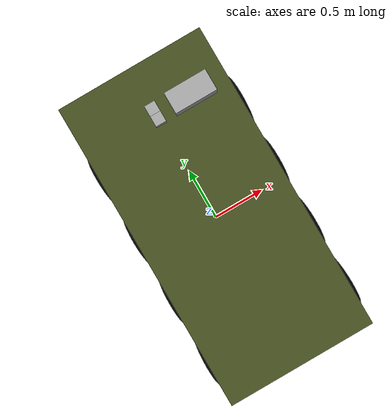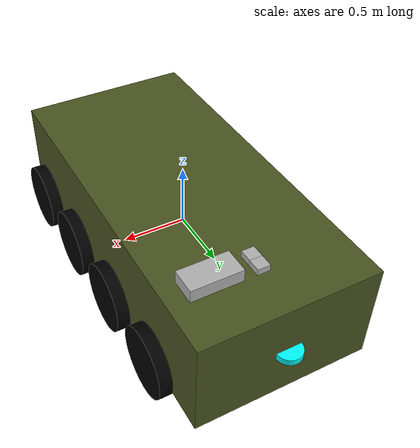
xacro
<?xml version="1.0" ?>
<!-- |    This document was autogenerated by xacro from /home/k/ros2_ws/src/my_robot_description/urdf/argo_j8.urdf.xacro | -->
<!-- |    EDITING THIS FILE BY HAND IS NOT RECOMMENDED                                 | -->
<robot name="argo_j8" xmlns:xacro="http://www.ros.org/wiki/xacro">
  <!-- Specify some standard inertial calculations https://en.wikipedia.org/wiki/List_of_moments_of_inertia -->
  <!-- These make use of xacro's mathematical functionality -->

<xacro:include filename="inertial_macros.xacro"/>
<xacro:include filename="wheel_macro.xacro"/>

  <!-- Definicion de materiales constantes -->
  <material name="Military green">
    <color rgba="0.29 0.33 0.13 1.0"/>
  </material>
  <material name="black">
    <color rgba="0.0 0.0 0.0 1.0"/>
  </material>
  <material name="blue">
    <color rgba="0.0 1.0 1.0 1.0"/>
  </material>
  <material name="grey">
    <color rgba="0.7 0.7 0.7 1.0"/>
  </material>

  <!-- Chasis -->
  <link name="base_link">
    <visual>
      <geometry>
        <box size="1.40 2.94 0.81"/> <!-- Dimensiones en metros -->
      </geometry>
      <origin rpy="0 0 0" xyz="0 0 0"/>
      <material name="Military green"/>
    </visual>
    <collision>
      <geometry>
        <box size="1.40 2.94 0.81"/> <!-- Dimensiones en metros -->
      </geometry>
      <origin rpy="0 0 0" xyz="0 0 0"/>
    </collision>
    <xacro:inertial_box mass="750" x="1.40" y="2.94" z="0.81">
     <origin xyz="0 0 0" rpy="0 0 0" />
    </xacro:inertial_box>
  </link>

  <!-- LiDAR, Camaras, y FixPosition -->
  <link name="LiDAR">
    <visual>
      <geometry>
        <cylinder length="0.05" radius="0.1"/> <!-- Dimensiones en metros -->
      </geometry>
      <origin rpy="0 0 0" xyz="0 0 0"/>
      <material name="blue"/>
    </visual>
    <collision>
      <geometry>
        <box size="0.2 0.2 0.05"/> <!-- Dimensiones en metros -->
      </geometry>
      <origin rpy="0 0 0" xyz="0 0 0"/>
    </collision>
  </link>

  <link name="front_camera">
    <visual>
      <geometry>
        <box size="0.1 0.1 0.1"/> <!-- Dimensiones en metros -->
      </geometry>
      <origin rpy="0 0 0" xyz="0 0 0"/>
      <material name="grey"/>
    </visual>
    <collision>
      <geometry>
        <box size="0.1 0.1 0.1"/> <!-- Dimensiones en metros -->
      </geometry>
      <origin rpy="0 0 0" xyz="0 0 0"/>
    </collision>
  </link>

  <link name="back_camera">
    <visual>
      <geometry>
        <box size="0.1 0.1 0.1"/> <!-- Dimensiones en metros -->
      </geometry>
      <origin rpy="0 0 0" xyz="0 0 0"/>
      <material name="grey"/>
    </visual>
    <collision>
      <geometry>
        <box size="0.1 0.1 0.1"/> <!-- Dimensiones en metros -->
      </geometry>
      <origin rpy="0 0 0" xyz="0 0 0"/>
    </collision>
  </link>

  <link name="fix_position">
    <visual>
      <geometry>
        <box size="0.4 0.2 0.2"/> <!-- Dimensiones en metros -->
      </geometry>
      <origin rpy="0 0 0" xyz="0 0 0"/>
      <material name="grey"/>
    </visual>
    <collision>
      <geometry>
        <box size="0.4 0.2 0.2"/> <!-- Dimensiones en metros -->
      </geometry>
      <origin rpy="0 0 0" xyz="0 0 0"/>
    </collision>
  </link>

<!-- Definicion de las 8 ruedas (links y joins) -->

  <xacro:wheel_macro prefix="front_left" origin_xyz="-0.7 0.88 -0.325" />
  <xacro:wheel_macro prefix="front_right" origin_xyz= "0.7 0.88 -0.325" />
  <xacro:wheel_macro prefix="midfront_left" origin_xyz= "-0.7 0.19 -0.325"/>
  <xacro:wheel_macro prefix="midfront_right" origin_xyz= "0.7 0.19 -0.325"/>
  <xacro:wheel_macro prefix="midback_left" origin_xyz= "-0.7 -0.5 -0.325" />
  <xacro:wheel_macro prefix="midback_right" origin_xyz= "0.7 -0.5 -0.325" />
  <xacro:wheel_macro prefix="back_left" origin_xyz= "-0.7 -1.19 -0.325" />
  <xacro:wheel_macro prefix="back_right" origin_xyz= "0.7 -1.19 -0.325" />

  <!-- Link virtual para base del plano.  -->
  <link name="base_footprint"/>

  <!-- Joint de referencia de la base del plano y Argo J8 -->
  <joint name="joint_base_footprint" type="fixed">
    <parent link="base_link"/>
    <child link="base_footprint"/>
    <origin rpy="0 0 0" xyz="0 0 -0.605"/>
    <!-- Posición de la rueda con respecto al chasis -->
  </joint>

  <!-- Definicion de Joints entre chasis y LiDAR, cámara y FixPosition con chasis -->

  <!-- Joint entre chasis y LiDAR -->
  <joint name="joint_LiDAR" type="fixed">
    <parent link="base_link"/>
    <child link="LiDAR"/>
    <origin rpy="0 0 1.57" xyz="0 1.47 0"/> <!-- Posición del LiDAR con respecto al chasis -->
  </joint>

  <!-- Joint entre chasis y camaras -->
  <joint name="joint_front_camera" type="fixed">
    <parent link="base_link"/>
    <child link="front_camera"/>
    <origin rpy="0 0 0" xyz="0 1.06 0.405"/> <!-- Posición de la camara con respecto al chasis -->
  </joint>

  <joint name="joint_back_camera" type="fixed">
    <parent link="base_link"/>
    <child link="back_camera"/>
    <origin rpy="0 0 0" xyz="0 0.96 0.405"/> <!-- Posición de la camara con respecto al chasis -->
  </joint>
  <!-- Joint entre chasis y FixPosition -->
  <joint name="joint_fix_position" type="fixed">
    <parent link="base_link"/>
    <child link="fix_position"/>
    <origin rpy="0 0 0" xyz="0.35 1.01 0.405"/> <!-- Posición del LiDAR con respecto al chasis -->
  </joint>

</robot>

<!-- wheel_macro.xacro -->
<robot xmlns:xacro="http://www.ros.org/wiki/xacro" >

    <!-- Specify some standard inertial calculations https://en.wikipedia.org/wiki/List_of_moments_of_inertia -->
    <!-- These make use of xacro's mathematical functionality -->

<!--  Se incluye el macro para el cálculo de la inercia -->
<xacro:include filename="inertial_macros.xacro"/>

<!-- Definicion de xacro ruedas -->

  <xacro:macro name="wheel_macro" params="prefix origin_xyz">
    <link name="${prefix}_wheel">
      <visual>
        <geometry>
          <cylinder length="0.20" radius="0.28"/> <!-- Radio y ancho de la rueda -->
        </geometry>
        <origin rpy="0 1.57 0" xyz="0 0 0"/> <!-- Radio en radianes -->
        <material name="black"/>
      </visual>
      <collision>
        <geometry>
          <cylinder length="0.20" radius="0.28"/> <!-- Radio y ancho de la rueda -->
        </geometry>
        <origin rpy="0 1.57 0" xyz="0 0 0"/> <!-- Radio en radianes -->
      </collision>
      <xacro:inertial_cylinder mass="11" radius="0.28" length="0.20">
        <origin xyz="0 0 0" rpy="0 1.57 0" /> <!-- Radio en radianes -->
      </xacro:inertial_cylinder>
    </link>

      <!-- Joint entre chasis y rueda -->
    <joint name="joint_${prefix}_wheel" type="continuous">
        <parent link="base_link"/>
        <child link="${prefix}_wheel"/>
        <origin rpy="0 0 0" xyz="${origin_xyz}"/> <!-- Posición de la rueda con respecto al chasis -->
        <axis xyz="-1 0 0"/> <!-- Eje de rotación -->
    </joint>

  </xacro:macro>

</robot>
